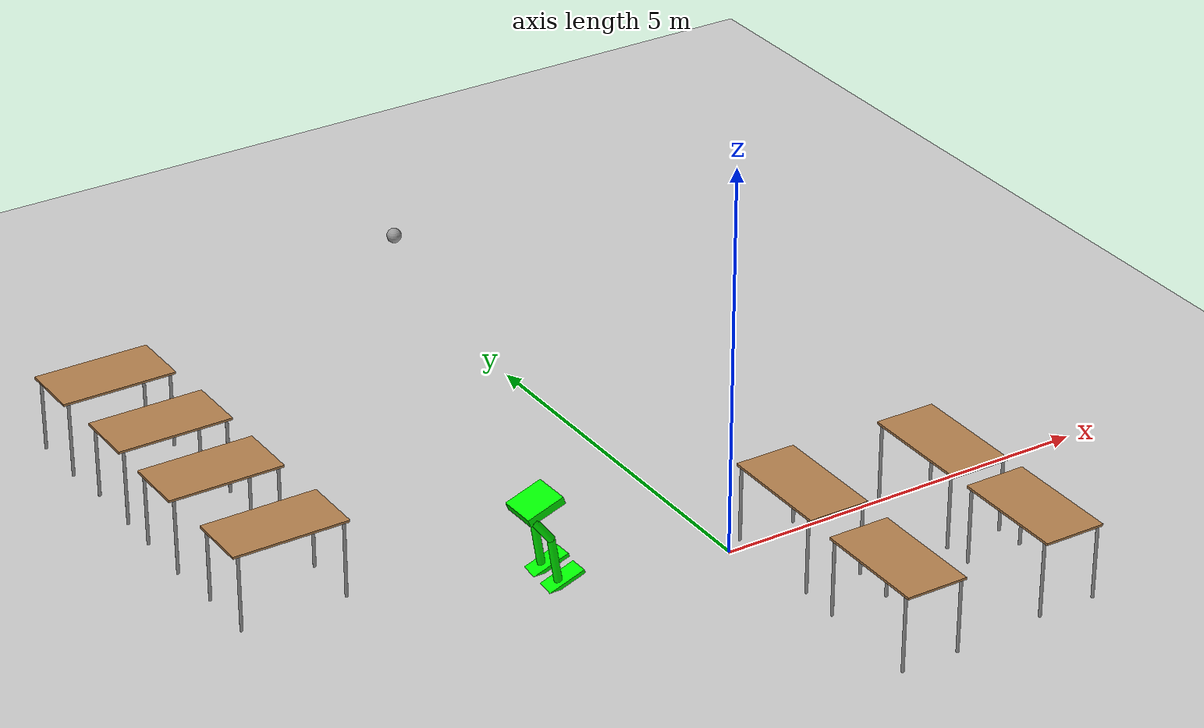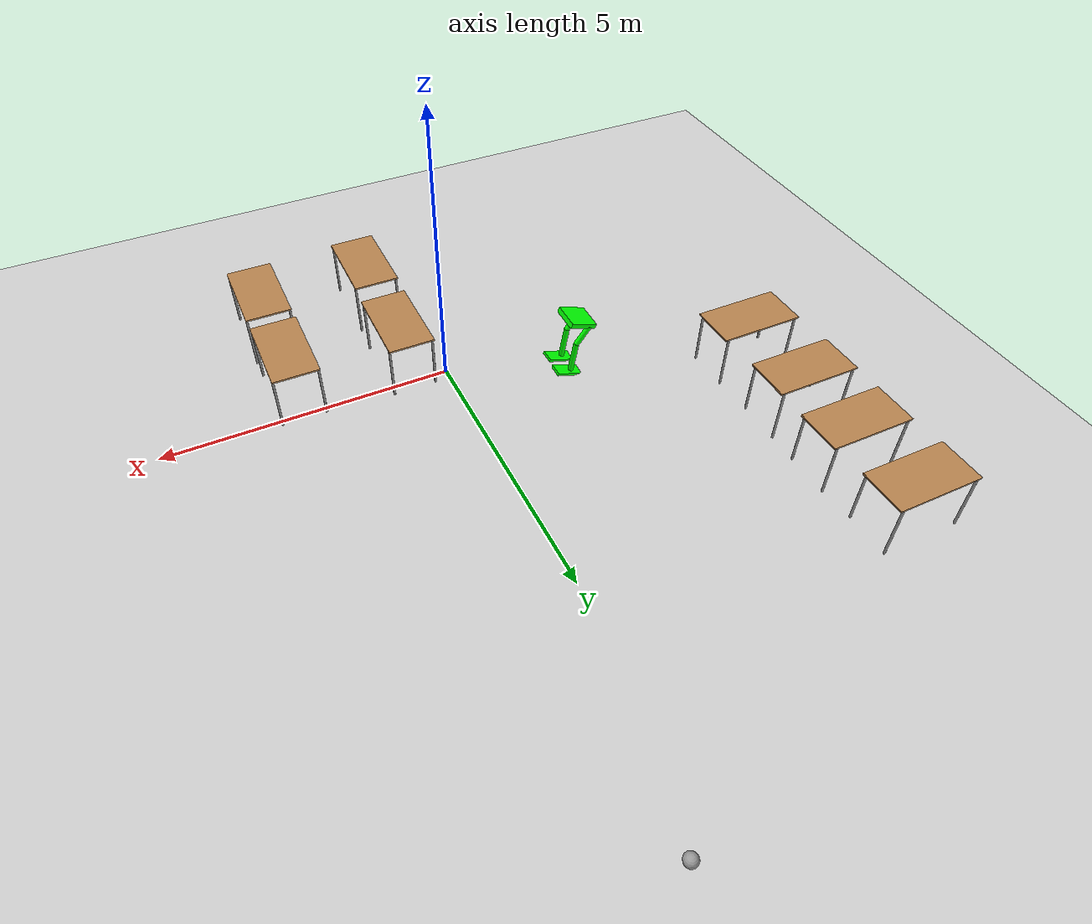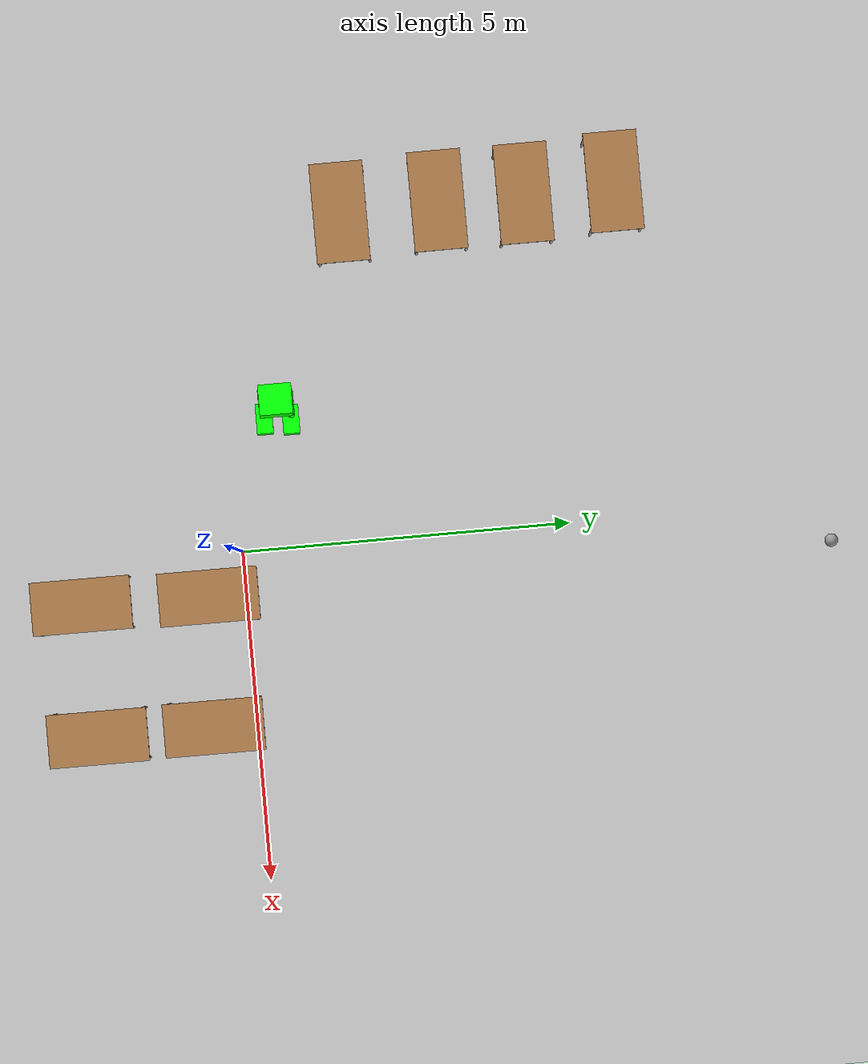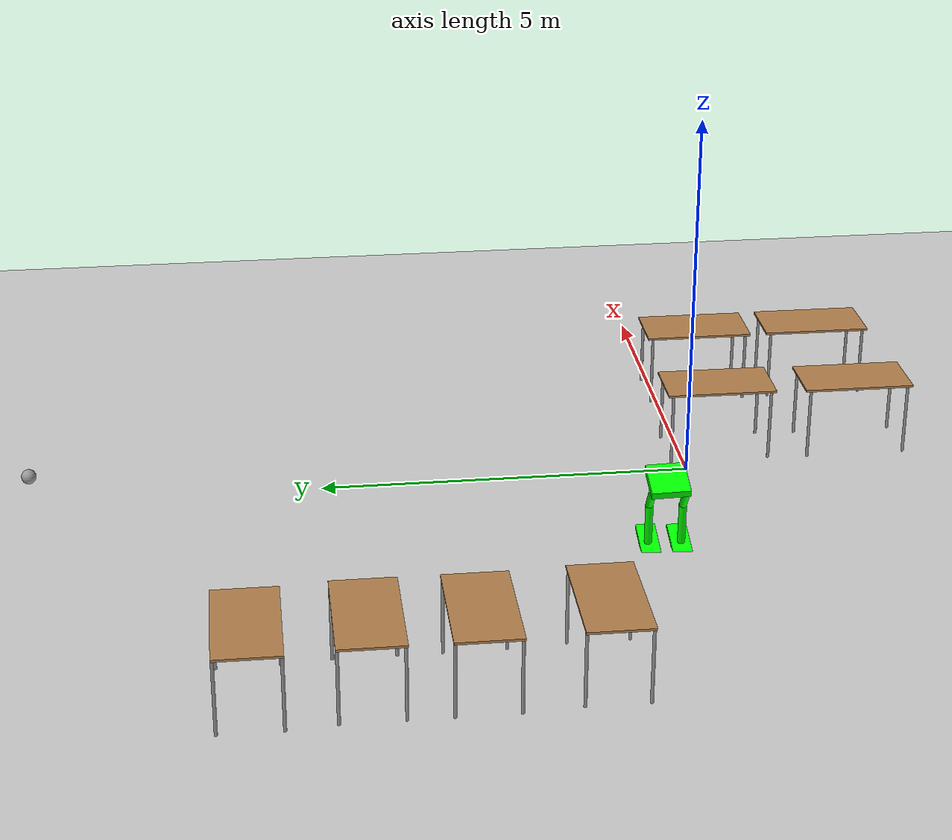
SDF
<sdf version="1.7">
 <world name="default">
  <model name="ground_plane">
   <static>1</static>
   <link name="link">
    <collision name="collision">
     <geometry><plane><normal>0 0 1</normal><size>100 100</size></plane></geometry>
     <surface>
      <contact><collide_bitmask>65535</collide_bitmask></contact>
      <friction><ode><mu>100</mu><mu2>50</mu2></ode></friction>
     </surface>
    </collision>
    <visual name="visual">
     <cast_shadows>0</cast_shadows>
     <geometry><plane><normal>0 0 1</normal><size>100 100</size></plane></geometry>
     <material>
      <script><uri>file://media/materials/scripts/gazebo.material</uri><name>Gazebo/Grey</name></script>
     </material>
    </visual>
   </link>
  </model>
  <model name="HumanoidRobot">
   <link name="link_0">
    <inertial>
     <mass>1</mass>
     <inertia>
      <ixx>0.166667</ixx>
      <ixy>0</ixy>
      <ixz>0</ixz>
      <iyy>0.166667</iyy>
      <iyz>0</iyz>
      <izz>0.166667</izz>
     </inertia>
    </inertial>
    <pose>-0.088426 0.010705 0.536121 0 -0 0</pose>
    <visual name="visual">
     <geometry><box><size>0.5 0.5 0.1</size></box></geometry>
     <material>
      <lighting>1</lighting>
      <script><uri>file://media/materials/scripts/gazebo.material</uri><name>Gazebo/Grey</name></script>
      <shader type="pixel"><normal_map>__default__</normal_map></shader>
      <ambient>0 1 0 1</ambient>
      <diffuse>0.7 0.7 0.7 1</diffuse>
      <specular>0.01 0.01 0.01 1</specular>
      <emissive>0 0 0 1</emissive>
     </material>
    </visual>
    <collision name="collision">
     <geometry><box><size>0.5 0.5 0.1</size></box></geometry>
     <surface>
      <friction>
       <ode><mu>1</mu><mu2>1</mu2><fdir1>0 0 0</fdir1><slip1>0</slip1><slip2>0</slip2></ode>
       <torsional>
        <coefficient>1</coefficient>
        <patch_radius>0</patch_radius>
        <surface_radius>0</surface_radius>
        <use_patch_radius>1</use_patch_radius>
        <ode><slip>0</slip></ode>
       </torsional>
      </friction>
      <bounce><restitution_coefficient>0</restitution_coefficient><threshold>1e+06</threshold></bounce>
      <contact>
       <collide_without_contact>0</collide_without_contact>
       <collide_without_contact_bitmask>1</collide_without_contact_bitmask>
       <collide_bitmask>1</collide_bitmask>
       <ode>
        <soft_cfm>0</soft_cfm>
        <soft_erp>0.2</soft_erp>
        <kp>1e+13</kp>
        <kd>1</kd>
        <max_vel>0.01</max_vel>
        <min_depth>0</min_depth>
       </ode>
       <bullet>
        <split_impulse>1</split_impulse>
        <split_impulse_penetration_threshold>-0.01</split_impulse_penetration_threshold>
        <soft_cfm>0</soft_cfm>
        <soft_erp>0.2</soft_erp>
        <kp>1e+13</kp>
        <kd>1</kd>
       </bullet>
      </contact>
     </surface>
    </collision>
   </link>
   <link name="link_1">
    <inertial>
     <mass>1</mass>
     <inertia>
      <ixx>0.166667</ixx>
      <ixy>0</ixy>
      <ixz>0</ixz>
      <iyy>0.166667</iyy>
      <iyz>0</iyz>
      <izz>0.166667</izz>
     </inertia>
    </inertial>
    <pose>-0.002836 -0.189031 -0.453961 0 -0 0</pose>
    <visual name="visual">
     <geometry><box><size>0.5 0.25 0.05</size></box></geometry>
     <material>
      <lighting>1</lighting>
      <script><uri>file://media/materials/scripts/gazebo.material</uri><name>Gazebo/Grey</name></script>
      <shader type="pixel"><normal_map>__default__</normal_map></shader>
      <ambient>0 1 0 1</ambient>
      <diffuse>0.7 0.7 0.7 1</diffuse>
      <specular>0.01 0.01 0.01 1</specular>
      <emissive>0 0 0 1</emissive>
     </material>
    </visual>
    <collision name="collision">
     <geometry><box><size>0.5 0.25 0.05</size></box></geometry>
     <surface>
      <friction>
       <ode><mu>1</mu><mu2>1</mu2><fdir1>0 0 0</fdir1><slip1>0</slip1><slip2>0</slip2></ode>
       <torsional>
        <coefficient>1</coefficient>
        <patch_radius>0</patch_radius>
        <surface_radius>0</surface_radius>
        <use_patch_radius>1</use_patch_radius>
        <ode><slip>0</slip></ode>
       </torsional>
      </friction>
      <bounce><restitution_coefficient>0</restitution_coefficient><threshold>1e+06</threshold></bounce>
      <contact>
       <collide_without_contact>0</collide_without_contact>
       <collide_without_contact_bitmask>1</collide_without_contact_bitmask>
       <collide_bitmask>1</collide_bitmask>
       <ode>
        <soft_cfm>0</soft_cfm>
        <soft_erp>0.2</soft_erp>
        <kp>1e+13</kp>
        <kd>1</kd>
        <max_vel>0.01</max_vel>
        <min_depth>0</min_depth>
       </ode>
       <bullet>
        <split_impulse>1</split_impulse>
        <split_impulse_penetration_threshold>-0.01</split_impulse_penetration_threshold>
        <soft_cfm>0</soft_cfm>
        <soft_erp>0.2</soft_erp>
        <kp>1e+13</kp>
        <kd>1</kd>
       </bullet>
      </contact>
     </surface>
    </collision>
   </link>
   <link name="link_1_clone">
    <inertial>
     <mass>1</mass>
     <inertia>
      <ixx>0.166667</ixx>
      <ixy>0</ixy>
      <ixz>0</ixz>
      <iyy>0.166667</iyy>
      <iyz>0</iyz>
      <izz>0.166667</izz>
     </inertia>
    </inertial>
    <pose>0.031524 0.211991 -0.453961 0 -0 0</pose>
    <visual name="visual">
     <geometry><box><size>0.5 0.25 0.05</size></box></geometry>
     <material>
      <lighting>1</lighting>
      <script><uri>file://media/materials/scripts/gazebo.material</uri><name>Gazebo/Grey</name></script>
      <shader type="pixel"><normal_map>__default__</normal_map></shader>
      <ambient>0 1 0 1</ambient>
      <diffuse>0.7 0.7 0.7 1</diffuse>
      <specular>0.01 0.01 0.01 1</specular>
      <emissive>0 0 0 1</emissive>
     </material>
    </visual>
    <collision name="collision">
     <geometry><box><size>0.5 0.25 0.05</size></box></geometry>
     <surface>
      <friction>
       <ode><mu>1</mu><mu2>1</mu2><fdir1>0 0 0</fdir1><slip1>0</slip1><slip2>0</slip2></ode>
       <torsional>
        <coefficient>1</coefficient>
        <patch_radius>0</patch_radius>
        <surface_radius>0</surface_radius>
        <use_patch_radius>1</use_patch_radius>
        <ode><slip>0</slip></ode>
       </torsional>
      </friction>
      <bounce><restitution_coefficient>0</restitution_coefficient><threshold>1e+06</threshold></bounce>
      <contact>
       <collide_without_contact>0</collide_without_contact>
       <collide_without_contact_bitmask>1</collide_without_contact_bitmask>
       <collide_bitmask>1</collide_bitmask>
       <ode>
        <soft_cfm>0</soft_cfm>
        <soft_erp>0.2</soft_erp>
        <kp>1e+13</kp>
        <kd>1</kd>
        <max_vel>0.01</max_vel>
        <min_depth>0</min_depth>
       </ode>
       <bullet>
        <split_impulse>1</split_impulse>
        <split_impulse_penetration_threshold>-0.01</split_impulse_penetration_threshold>
        <soft_cfm>0</soft_cfm>
        <soft_erp>0.2</soft_erp>
        <kp>1e+13</kp>
        <kd>1</kd>
       </bullet>
      </contact>
     </surface>
    </collision>
   </link>
   <link name="link_2">
    <inertial>
     <mass>1</mass>
     <inertia><ixx>0.145833</ixx><ixy>0</ixy><ixz>0</ixz><iyy>0.145833</iyy><iyz>0</iyz><izz>0.125</izz></inertia>
    </inertial>
    <pose>-0.002516 -0.205584 0.325243 0 0.295116 0</pose>
    <visual name="visual">
     <geometry><cylinder><radius>0.05</radius><length>0.4</length></cylinder></geometry>
     <material>
      <lighting>1</lighting>
      <script><uri>file://media/materials/scripts/gazebo.material</uri><name>Gazebo/Grey</name></script>
      <shader type="pixel"><normal_map>__default__</normal_map></shader>
      <ambient>0 1 0 1</ambient>
      <diffuse>0.7 0.7 0.7 1</diffuse>
      <specular>0.01 0.01 0.01 1</specular>
      <emissive>0 0 0 1</emissive>
     </material>
    </visual>
    <collision name="collision">
     <geometry><cylinder><radius>0.05</radius><length>0.4</length></cylinder></geometry>
     <surface>
      <friction>
       <ode><mu>1</mu><mu2>1</mu2><fdir1>0 0 0</fdir1><slip1>0</slip1><slip2>0</slip2></ode>
       <torsional>
        <coefficient>1</coefficient>
        <patch_radius>0</patch_radius>
        <surface_radius>0</surface_radius>
        <use_patch_radius>1</use_patch_radius>
        <ode><slip>0</slip></ode>
       </torsional>
      </friction>
      <bounce><restitution_coefficient>0</restitution_coefficient><threshold>1e+06</threshold></bounce>
      <contact>
       <collide_without_contact>0</collide_without_contact>
       <collide_without_contact_bitmask>1</collide_without_contact_bitmask>
       <collide_bitmask>1</collide_bitmask>
       <ode>
        <soft_cfm>0</soft_cfm>
        <soft_erp>0.2</soft_erp>
        <kp>1e+13</kp>
        <kd>1</kd>
        <max_vel>0.01</max_vel>
        <min_depth>0</min_depth>
       </ode>
       <bullet>
        <split_impulse>1</split_impulse>
        <split_impulse_penetration_threshold>-0.01</split_impulse_penetration_threshold>
        <soft_cfm>0</soft_cfm>
        <soft_erp>0.2</soft_erp>
        <kp>1e+13</kp>
        <kd>1</kd>
       </bullet>
      </contact>
     </surface>
    </collision>
   </link>
   <link name="link_2_clone_0">
    <inertial>
     <mass>1</mass>
     <inertia><ixx>0.145833</ixx><ixy>0</ixy><ixz>0</ixz><iyy>0.145833</iyy><iyz>0</iyz><izz>0.125</izz></inertia>
    </inertial>
    <pose>0.033564 0.221349 0.325243 0 0.295116 0</pose>
    <visual name="visual">
     <geometry><cylinder><radius>0.05</radius><length>0.4</length></cylinder></geometry>
     <material>
      <lighting>1</lighting>
      <script><uri>file://media/materials/scripts/gazebo.material</uri><name>Gazebo/Grey</name></script>
      <shader type="pixel"><normal_map>__default__</normal_map></shader>
      <ambient>0 1 0 1</ambient>
      <diffuse>0.7 0.7 0.7 1</diffuse>
      <specular>0.01 0.01 0.01 1</specular>
      <emissive>0 0 0 1</emissive>
     </material>
    </visual>
    <collision name="collision">
     <geometry><cylinder><radius>0.05</radius><length>0.4</length></cylinder></geometry>
     <surface>
      <friction>
       <ode><mu>1</mu><mu2>1</mu2><fdir1>0 0 0</fdir1><slip1>0</slip1><slip2>0</slip2></ode>
       <torsional>
        <coefficient>1</coefficient>
        <patch_radius>0</patch_radius>
        <surface_radius>0</surface_radius>
        <use_patch_radius>1</use_patch_radius>
        <ode><slip>0</slip></ode>
       </torsional>
      </friction>
      <bounce><restitution_coefficient>0</restitution_coefficient><threshold>1e+06</threshold></bounce>
      <contact>
       <collide_without_contact>0</collide_without_contact>
       <collide_without_contact_bitmask>1</collide_without_contact_bitmask>
       <collide_bitmask>1</collide_bitmask>
       <ode>
        <soft_cfm>0</soft_cfm>
        <soft_erp>0.2</soft_erp>
        <kp>1e+13</kp>
        <kd>1</kd>
        <max_vel>0.01</max_vel>
        <min_depth>0</min_depth>
       </ode>
       <bullet>
        <split_impulse>1</split_impulse>
        <split_impulse_penetration_threshold>-0.01</split_impulse_penetration_threshold>
        <soft_cfm>0</soft_cfm>
        <soft_erp>0.2</soft_erp>
        <kp>1e+13</kp>
        <kd>1</kd>
       </bullet>
      </contact>
     </surface>
    </collision>
   </link>
   <link name="link_2_clone_clone">
    <inertial>
     <mass>1</mass>
     <inertia><ixx>0.145833</ixx><ixy>0</ixy><ixz>0</ixz><iyy>0.145833</iyy><iyz>0</iyz><izz>0.125</izz></inertia>
    </inertial>
    <pose>-0.002836 -0.203823 -0.139342 0 -0.190908 0</pose>
    <visual name="visual">
     <geometry><cylinder><radius>0.05</radius><length>0.6</length></cylinder></geometry>
     <material>
      <lighting>1</lighting>
      <script><uri>file://media/materials/scripts/gazebo.material</uri><name>Gazebo/Grey</name></script>
      <shader type="pixel"><normal_map>__default__</normal_map></shader>
      <ambient>0 1 0 1</ambient>
      <diffuse>0.7 0.7 0.7 1</diffuse>
      <specular>0.01 0.01 0.01 1</specular>
      <emissive>0 0 0 1</emissive>
     </material>
    </visual>
    <collision name="collision">
     <geometry><cylinder><radius>0.05</radius><length>0.6</length></cylinder></geometry>
     <surface>
      <friction>
       <ode><mu>1</mu><mu2>1</mu2><fdir1>0 0 0</fdir1><slip1>0</slip1><slip2>0</slip2></ode>
       <torsional>
        <coefficient>1</coefficient>
        <patch_radius>0</patch_radius>
        <surface_radius>0</surface_radius>
        <use_patch_radius>1</use_patch_radius>
        <ode><slip>0</slip></ode>
       </torsional>
      </friction>
      <bounce><restitution_coefficient>0</restitution_coefficient><threshold>1e+06</threshold></bounce>
      <contact>
       <collide_without_contact>0</collide_without_contact>
       <collide_without_contact_bitmask>1</collide_without_contact_bitmask>
       <collide_bitmask>1</collide_bitmask>
       <ode>
        <soft_cfm>0</soft_cfm>
        <soft_erp>0.2</soft_erp>
        <kp>1e+13</kp>
        <kd>1</kd>
        <max_vel>0.01</max_vel>
        <min_depth>0</min_depth>
       </ode>
       <bullet>
        <split_impulse>1</split_impulse>
        <split_impulse_penetration_threshold>-0.01</split_impulse_penetration_threshold>
        <soft_cfm>0</soft_cfm>
        <soft_erp>0.2</soft_erp>
        <kp>1e+13</kp>
        <kd>1</kd>
       </bullet>
      </contact>
     </surface>
    </collision>
   </link>
   <link name="link_2_clone_clone_clone">
    <inertial>
     <mass>1</mass>
     <inertia><ixx>0.145833</ixx><ixy>0</ixy><ixz>0</ixz><iyy>0.145833</iyy><iyz>0</iyz><izz>0.125</izz></inertia>
    </inertial>
    <pose>0.031524 0.2206 -0.139342 0 -0.190908 0</pose>
    <visual name="visual">
     <geometry><cylinder><radius>0.05</radius><length>0.6</length></cylinder></geometry>
     <material>
      <lighting>1</lighting>
      <script><uri>file://media/materials/scripts/gazebo.material</uri><name>Gazebo/Grey</name></script>
      <shader type="pixel"><normal_map>__default__</normal_map></shader>
      <ambient>0 1 0 1</ambient>
      <diffuse>0.7 0.7 0.7 1</diffuse>
      <specular>0.01 0.01 0.01 1</specular>
      <emissive>0 0 0 1</emissive>
     </material>
    </visual>
    <collision name="collision">
     <geometry><cylinder><radius>0.05</radius><length>0.6</length></cylinder></geometry>
     <surface>
      <friction>
       <ode><mu>1</mu><mu2>1</mu2><fdir1>0 0 0</fdir1><slip1>0</slip1><slip2>0</slip2></ode>
       <torsional>
        <coefficient>1</coefficient>
        <patch_radius>0</patch_radius>
        <surface_radius>0</surface_radius>
        <use_patch_radius>1</use_patch_radius>
        <ode><slip>0</slip></ode>
       </torsional>
      </friction>
      <bounce><restitution_coefficient>0</restitution_coefficient><threshold>1e+06</threshold></bounce>
      <contact>
       <collide_without_contact>0</collide_without_contact>
       <collide_without_contact_bitmask>1</collide_without_contact_bitmask>
       <collide_bitmask>1</collide_bitmask>
       <ode>
        <soft_cfm>0</soft_cfm>
        <soft_erp>0.2</soft_erp>
        <kp>1e+13</kp>
        <kd>1</kd>
        <max_vel>0.01</max_vel>
        <min_depth>0</min_depth>
       </ode>
       <bullet>
        <split_impulse>1</split_impulse>
        <split_impulse_penetration_threshold>-0.01</split_impulse_penetration_threshold>
        <soft_cfm>0</soft_cfm>
        <soft_erp>0.2</soft_erp>
        <kp>1e+13</kp>
        <kd>1</kd>
       </bullet>
      </contact>
     </surface>
    </collision>
   </link>
   <joint name="link_0_JOINT_0" type="revolute">
    <parent>link_0</parent>
    <child>link_2</child>
    <axis>
     <xyz>0 0 1</xyz>
     <limit>
      <lower>-1.79769e+308</lower>
      <upper>1.79769e+308</upper>
      <effort>-1</effort>
      <velocity>-1</velocity>
     </limit>
     <dynamics>
      <spring_reference>0</spring_reference>
      <spring_stiffness>0</spring_stiffness>
      <damping>0</damping>
      <friction>0</friction>
     </dynamics>
    </axis>
    <physics>
     <ode><limit><cfm>0</cfm><erp>0.2</erp></limit><suspension><cfm>0</cfm><erp>0.2</erp></suspension></ode>
    </physics>
   </joint>
   <joint name="link_0_JOINT_1" type="revolute">
    <parent>link_0</parent>
    <child>link_2_clone_0</child>
    <axis>
     <xyz>0 0 1</xyz>
     <limit>
      <lower>-1.79769e+308</lower>
      <upper>1.79769e+308</upper>
      <effort>-1</effort>
      <velocity>-1</velocity>
     </limit>
     <dynamics>
      <spring_reference>0</spring_reference>
      <spring_stiffness>0</spring_stiffness>
      <damping>0</damping>
      <friction>0</friction>
     </dynamics>
    </axis>
    <physics>
     <ode><limit><cfm>0</cfm><erp>0.2</erp></limit><suspension><cfm>0</cfm><erp>0.2</erp></suspension></ode>
    </physics>
   </joint>
   <joint name="link_2_JOINT_3" type="revolute">
    <parent>link_2</parent>
    <child>link_2_clone_clone</child>
    <axis>
     <xyz>0 0 1</xyz>
     <limit>
      <lower>-1.79769e+308</lower>
      <upper>1.79769e+308</upper>
      <effort>-1</effort>
      <velocity>-1</velocity>
     </limit>
     <dynamics>
      <spring_reference>0</spring_reference>
      <spring_stiffness>0</spring_stiffness>
      <damping>0</damping>
      <friction>0</friction>
     </dynamics>
    </axis>
    <physics>
     <ode><limit><cfm>0</cfm><erp>0.2</erp></limit><suspension><cfm>0</cfm><erp>0.2</erp></suspension></ode>
    </physics>
   </joint>
   <joint name="link_2_clone_0_JOINT_4" type="revolute">
    <parent>link_2_clone_0</parent>
    <child>link_2_clone_clone_clone</child>
    <axis>
     <xyz>0 0 1</xyz>
     <limit>
      <lower>-1.79769e+308</lower>
      <upper>1.79769e+308</upper>
      <effort>-1</effort>
      <velocity>-1</velocity>
     </limit>
     <dynamics>
      <spring_reference>0</spring_reference>
      <spring_stiffness>0</spring_stiffness>
      <damping>0</damping>
      <friction>0</friction>
     </dynamics>
    </axis>
    <physics>
     <ode><limit><cfm>0</cfm><erp>0.2</erp></limit><suspension><cfm>0</cfm><erp>0.2</erp></suspension></ode>
    </physics>
   </joint>
   <joint name="link_2_clone_clone_JOINT_5" type="revolute">
    <parent>link_2_clone_clone</parent>
    <child>link_1</child>
    <axis>
     <xyz>0 0 1</xyz>
     <limit>
      <lower>-1.79769e+308</lower>
      <upper>1.79769e+308</upper>
      <effort>-1</effort>
      <velocity>-1</velocity>
     </limit>
     <dynamics>
      <spring_reference>0</spring_reference>
      <spring_stiffness>0</spring_stiffness>
      <damping>0</damping>
      <friction>0</friction>
     </dynamics>
    </axis>
    <physics>
     <ode><limit><cfm>0</cfm><erp>0.2</erp></limit><suspension><cfm>0</cfm><erp>0.2</erp></suspension></ode>
    </physics>
   </joint>
   <joint name="link_2_clone_clone_clone_JOINT_6" type="revolute">
    <parent>link_2_clone_clone_clone</parent>
    <child>link_1_clone</child>
    <axis>
     <xyz>0 0 1</xyz>
     <limit>
      <lower>-1.79769e+308</lower>
      <upper>1.79769e+308</upper>
      <effort>-1</effort>
      <velocity>-1</velocity>
     </limit>
     <dynamics>
      <spring_reference>0</spring_reference>
      <spring_stiffness>0</spring_stiffness>
      <damping>0</damping>
      <friction>0</friction>
     </dynamics>
    </axis>
    <physics>
     <ode><limit><cfm>0</cfm><erp>0.2</erp></limit><suspension><cfm>0</cfm><erp>0.2</erp></suspension></ode>
    </physics>
   </joint>
   <static>0</static>
   <pose>-2.1027 0.733503 0.473362 0.028454 0.335167 -3.13391</pose>
  </model>
  <model name="table">
   <static>1</static>
   <link name="link">
    <collision name="surface">
     <pose>0 0 1 0 -0 0</pose>
     <geometry><box><size>1.5 0.8 0.03</size></box></geometry>
     <surface><friction><ode><mu>0.6</mu><mu2>0.6</mu2></ode></friction></surface>
    </collision>
    <visual name="visual1">
     <pose>0 0 1 0 -0 0</pose>
     <geometry><box><size>1.5 0.8 0.03</size></box></geometry>
     <material>
      <script><uri>file://media/materials/scripts/gazebo.material</uri><name>Gazebo/Wood</name></script>
     </material>
    </visual>
    <collision name="front_left_leg">
     <pose>0.68 0.38 0.5 0 -0 0</pose>
     <geometry><cylinder><radius>0.02</radius><length>1</length></cylinder></geometry>
    </collision>
    <visual name="front_left_leg">
     <pose>0.68 0.38 0.5 0 -0 0</pose>
     <geometry><cylinder><radius>0.02</radius><length>1</length></cylinder></geometry>
     <material>
      <script><uri>file://media/materials/scripts/gazebo.material</uri><name>Gazebo/Grey</name></script>
     </material>
    </visual>
    <collision name="front_right_leg">
     <pose>0.68 -0.38 0.5 0 -0 0</pose>
     <geometry><cylinder><radius>0.02</radius><length>1</length></cylinder></geometry>
    </collision>
    <visual name="front_right_leg">
     <pose>0.68 -0.38 0.5 0 -0 0</pose>
     <geometry><cylinder><radius>0.02</radius><length>1</length></cylinder></geometry>
     <material>
      <script><uri>file://media/materials/scripts/gazebo.material</uri><name>Gazebo/Grey</name></script>
     </material>
    </visual>
    <collision name="back_right_leg">
     <pose>-0.68 -0.38 0.5 0 -0 0</pose>
     <geometry><cylinder><radius>0.02</radius><length>1</length></cylinder></geometry>
    </collision>
    <visual name="back_right_leg">
     <pose>-0.68 -0.38 0.5 0 -0 0</pose>
     <geometry><cylinder><radius>0.02</radius><length>1</length></cylinder></geometry>
     <material>
      <script><uri>file://media/materials/scripts/gazebo.material</uri><name>Gazebo/Grey</name></script>
     </material>
    </visual>
    <collision name="back_left_leg">
     <pose>-0.68 0.38 0.5 0 -0 0</pose>
     <geometry><cylinder><radius>0.02</radius><length>1</length></cylinder></geometry>
    </collision>
    <visual name="back_left_leg">
     <pose>-0.68 0.38 0.5 0 -0 0</pose>
     <geometry><cylinder><radius>0.02</radius><length>1</length></cylinder></geometry>
     <material>
      <script><uri>file://media/materials/scripts/gazebo.material</uri><name>Gazebo/Grey</name></script>
     </material>
    </visual>
   </link>
   <pose>-5.01998 6.07015 0 0 -0 0</pose>
  </model>
  <model name="table_clone">
   <static>1</static>
   <link name="link">
    <collision name="surface">
     <pose>0 0 1 0 -0 0</pose>
     <geometry><box><size>1.5 0.8 0.03</size></box></geometry>
     <surface><friction><ode><mu>0.6</mu><mu2>0.6</mu2></ode></friction></surface>
    </collision>
    <visual name="visual1">
     <pose>0 0 1 0 -0 0</pose>
     <geometry><box><size>1.5 0.8 0.03</size></box></geometry>
     <material>
      <script><uri>file://media/materials/scripts/gazebo.material</uri><name>Gazebo/Wood</name></script>
     </material>
    </visual>
    <collision name="front_left_leg">
     <pose>0.68 0.38 0.5 0 -0 0</pose>
     <geometry><cylinder><radius>0.02</radius><length>1</length></cylinder></geometry>
    </collision>
    <visual name="front_left_leg">
     <pose>0.68 0.38 0.5 0 -0 0</pose>
     <geometry><cylinder><radius>0.02</radius><length>1</length></cylinder></geometry>
     <material>
      <script><uri>file://media/materials/scripts/gazebo.material</uri><name>Gazebo/Grey</name></script>
     </material>
    </visual>
    <collision name="front_right_leg">
     <pose>0.68 -0.38 0.5 0 -0 0</pose>
     <geometry><cylinder><radius>0.02</radius><length>1</length></cylinder></geometry>
    </collision>
    <visual name="front_right_leg">
     <pose>0.68 -0.38 0.5 0 -0 0</pose>
     <geometry><cylinder><radius>0.02</radius><length>1</length></cylinder></geometry>
     <material>
      <script><uri>file://media/materials/scripts/gazebo.material</uri><name>Gazebo/Grey</name></script>
     </material>
    </visual>
    <collision name="back_right_leg">
     <pose>-0.68 -0.38 0.5 0 -0 0</pose>
     <geometry><cylinder><radius>0.02</radius><length>1</length></cylinder></geometry>
    </collision>
    <visual name="back_right_leg">
     <pose>-0.68 -0.38 0.5 0 -0 0</pose>
     <geometry><cylinder><radius>0.02</radius><length>1</length></cylinder></geometry>
     <material>
      <script><uri>file://media/materials/scripts/gazebo.material</uri><name>Gazebo/Grey</name></script>
     </material>
    </visual>
    <collision name="back_left_leg">
     <pose>-0.68 0.38 0.5 0 -0 0</pose>
     <geometry><cylinder><radius>0.02</radius><length>1</length></cylinder></geometry>
    </collision>
    <visual name="back_left_leg">
     <pose>-0.68 0.38 0.5 0 -0 0</pose>
     <geometry><cylinder><radius>0.02</radius><length>1</length></cylinder></geometry>
     <material>
      <script><uri>file://media/materials/scripts/gazebo.material</uri><name>Gazebo/Grey</name></script>
     </material>
    </visual>
   </link>
   <pose>-4.96274 4.7131 0 0 -0 0</pose>
  </model>
  <model name="table_clone_0">
   <static>1</static>
   <link name="link">
    <collision name="surface">
     <pose>0 0 1 0 -0 0</pose>
     <geometry><box><size>1.5 0.8 0.03</size></box></geometry>
     <surface><friction><ode><mu>0.6</mu><mu2>0.6</mu2></ode></friction></surface>
    </collision>
    <visual name="visual1">
     <pose>0 0 1 0 -0 0</pose>
     <geometry><box><size>1.5 0.8 0.03</size></box></geometry>
     <material>
      <script><uri>file://media/materials/scripts/gazebo.material</uri><name>Gazebo/Wood</name></script>
     </material>
    </visual>
    <collision name="front_left_leg">
     <pose>0.68 0.38 0.5 0 -0 0</pose>
     <geometry><cylinder><radius>0.02</radius><length>1</length></cylinder></geometry>
    </collision>
    <visual name="front_left_leg">
     <pose>0.68 0.38 0.5 0 -0 0</pose>
     <geometry><cylinder><radius>0.02</radius><length>1</length></cylinder></geometry>
     <material>
      <script><uri>file://media/materials/scripts/gazebo.material</uri><name>Gazebo/Grey</name></script>
     </material>
    </visual>
    <collision name="front_right_leg">
     <pose>0.68 -0.38 0.5 0 -0 0</pose>
     <geometry><cylinder><radius>0.02</radius><length>1</length></cylinder></geometry>
    </collision>
    <visual name="front_right_leg">
     <pose>0.68 -0.38 0.5 0 -0 0</pose>
     <geometry><cylinder><radius>0.02</radius><length>1</length></cylinder></geometry>
     <material>
      <script><uri>file://media/materials/scripts/gazebo.material</uri><name>Gazebo/Grey</name></script>
     </material>
    </visual>
    <collision name="back_right_leg">
     <pose>-0.68 -0.38 0.5 0 -0 0</pose>
     <geometry><cylinder><radius>0.02</radius><length>1</length></cylinder></geometry>
    </collision>
    <visual name="back_right_leg">
     <pose>-0.68 -0.38 0.5 0 -0 0</pose>
     <geometry><cylinder><radius>0.02</radius><length>1</length></cylinder></geometry>
     <material>
      <script><uri>file://media/materials/scripts/gazebo.material</uri><name>Gazebo/Grey</name></script>
     </material>
    </visual>
    <collision name="back_left_leg">
     <pose>-0.68 0.38 0.5 0 -0 0</pose>
     <geometry><cylinder><radius>0.02</radius><length>1</length></cylinder></geometry>
    </collision>
    <visual name="back_left_leg">
     <pose>-0.68 0.38 0.5 0 -0 0</pose>
     <geometry><cylinder><radius>0.02</radius><length>1</length></cylinder></geometry>
     <material>
      <script><uri>file://media/materials/scripts/gazebo.material</uri><name>Gazebo/Grey</name></script>
     </material>
    </visual>
   </link>
   <pose>-4.96837 3.41656 0 0 -0 0</pose>
  </model>
  <model name="table_clone_1">
   <static>1</static>
   <link name="link">
    <collision name="surface">
     <pose>0 0 1 0 -0 0</pose>
     <geometry><box><size>1.5 0.8 0.03</size></box></geometry>
     <surface><friction><ode><mu>0.6</mu><mu2>0.6</mu2></ode></friction></surface>
    </collision>
    <visual name="visual1">
     <pose>0 0 1 0 -0 0</pose>
     <geometry><box><size>1.5 0.8 0.03</size></box></geometry>
     <material>
      <script><uri>file://media/materials/scripts/gazebo.material</uri><name>Gazebo/Wood</name></script>
     </material>
    </visual>
    <collision name="front_left_leg">
     <pose>0.68 0.38 0.5 0 -0 0</pose>
     <geometry><cylinder><radius>0.02</radius><length>1</length></cylinder></geometry>
    </collision>
    <visual name="front_left_leg">
     <pose>0.68 0.38 0.5 0 -0 0</pose>
     <geometry><cylinder><radius>0.02</radius><length>1</length></cylinder></geometry>
     <material>
      <script><uri>file://media/materials/scripts/gazebo.material</uri><name>Gazebo/Grey</name></script>
     </material>
    </visual>
    <collision name="front_right_leg">
     <pose>0.68 -0.38 0.5 0 -0 0</pose>
     <geometry><cylinder><radius>0.02</radius><length>1</length></cylinder></geometry>
    </collision>
    <visual name="front_right_leg">
     <pose>0.68 -0.38 0.5 0 -0 0</pose>
     <geometry><cylinder><radius>0.02</radius><length>1</length></cylinder></geometry>
     <material>
      <script><uri>file://media/materials/scripts/gazebo.material</uri><name>Gazebo/Grey</name></script>
     </material>
    </visual>
    <collision name="back_right_leg">
     <pose>-0.68 -0.38 0.5 0 -0 0</pose>
     <geometry><cylinder><radius>0.02</radius><length>1</length></cylinder></geometry>
    </collision>
    <visual name="back_right_leg">
     <pose>-0.68 -0.38 0.5 0 -0 0</pose>
     <geometry><cylinder><radius>0.02</radius><length>1</length></cylinder></geometry>
     <material>
      <script><uri>file://media/materials/scripts/gazebo.material</uri><name>Gazebo/Grey</name></script>
     </material>
    </visual>
    <collision name="back_left_leg">
     <pose>-0.68 0.38 0.5 0 -0 0</pose>
     <geometry><cylinder><radius>0.02</radius><length>1</length></cylinder></geometry>
    </collision>
    <visual name="back_left_leg">
     <pose>-0.68 0.38 0.5 0 -0 0</pose>
     <geometry><cylinder><radius>0.02</radius><length>1</length></cylinder></geometry>
     <material>
      <script><uri>file://media/materials/scripts/gazebo.material</uri><name>Gazebo/Grey</name></script>
     </material>
    </visual>
   </link>
   <pose>-4.92122 1.94307 0 0 -0 0</pose>
  </model>
  <model name="table_clone_2">
   <static>1</static>
   <link name="link">
    <collision name="surface">
     <pose>0 0 1 0 -0 0</pose>
     <geometry><box><size>1.5 0.8 0.03</size></box></geometry>
     <surface><friction><ode><mu>0.6</mu><mu2>0.6</mu2></ode></friction></surface>
    </collision>
    <visual name="visual1">
     <pose>0 0 1 0 -0 0</pose>
     <geometry><box><size>1.5 0.8 0.03</size></box></geometry>
     <material>
      <script><uri>file://media/materials/scripts/gazebo.material</uri><name>Gazebo/Wood</name></script>
     </material>
    </visual>
    <collision name="front_left_leg">
     <pose>0.68 0.38 0.5 0 -0 0</pose>
     <geometry><cylinder><radius>0.02</radius><length>1</length></cylinder></geometry>
    </collision>
    <visual name="front_left_leg">
     <pose>0.68 0.38 0.5 0 -0 0</pose>
     <geometry><cylinder><radius>0.02</radius><length>1</length></cylinder></geometry>
     <material>
      <script><uri>file://media/materials/scripts/gazebo.material</uri><name>Gazebo/Grey</name></script>
     </material>
    </visual>
    <collision name="front_right_leg">
     <pose>0.68 -0.38 0.5 0 -0 0</pose>
     <geometry><cylinder><radius>0.02</radius><length>1</length></cylinder></geometry>
    </collision>
    <visual name="front_right_leg">
     <pose>0.68 -0.38 0.5 0 -0 0</pose>
     <geometry><cylinder><radius>0.02</radius><length>1</length></cylinder></geometry>
     <material>
      <script><uri>file://media/materials/scripts/gazebo.material</uri><name>Gazebo/Grey</name></script>
     </material>
    </visual>
    <collision name="back_right_leg">
     <pose>-0.68 -0.38 0.5 0 -0 0</pose>
     <geometry><cylinder><radius>0.02</radius><length>1</length></cylinder></geometry>
    </collision>
    <visual name="back_right_leg">
     <pose>-0.68 -0.38 0.5 0 -0 0</pose>
     <geometry><cylinder><radius>0.02</radius><length>1</length></cylinder></geometry>
     <material>
      <script><uri>file://media/materials/scripts/gazebo.material</uri><name>Gazebo/Grey</name></script>
     </material>
    </visual>
    <collision name="back_left_leg">
     <pose>-0.68 0.38 0.5 0 -0 0</pose>
     <geometry><cylinder><radius>0.02</radius><length>1</length></cylinder></geometry>
    </collision>
    <visual name="back_left_leg">
     <pose>-0.68 0.38 0.5 0 -0 0</pose>
     <geometry><cylinder><radius>0.02</radius><length>1</length></cylinder></geometry>
     <material>
      <script><uri>file://media/materials/scripts/gazebo.material</uri><name>Gazebo/Grey</name></script>
     </material>
    </visual>
   </link>
   <pose>0.639722 -0.516602 0 0 -0 1.5674</pose>
  </model>
  <model name="table_clone_2_clone">
   <static>1</static>
   <link name="link">
    <collision name="surface">
     <pose>0 0 1 0 -0 0</pose>
     <geometry><box><size>1.5 0.8 0.03</size></box></geometry>
     <surface><friction><ode><mu>0.6</mu><mu2>0.6</mu2></ode></friction></surface>
    </collision>
    <visual name="visual1">
     <pose>0 0 1 0 -0 0</pose>
     <geometry><box><size>1.5 0.8 0.03</size></box></geometry>
     <material>
      <script><uri>file://media/materials/scripts/gazebo.material</uri><name>Gazebo/Wood</name></script>
     </material>
    </visual>
    <collision name="front_left_leg">
     <pose>0.68 0.38 0.5 0 -0 0</pose>
     <geometry><cylinder><radius>0.02</radius><length>1</length></cylinder></geometry>
    </collision>
    <visual name="front_left_leg">
     <pose>0.68 0.38 0.5 0 -0 0</pose>
     <geometry><cylinder><radius>0.02</radius><length>1</length></cylinder></geometry>
     <material>
      <script><uri>file://media/materials/scripts/gazebo.material</uri><name>Gazebo/Grey</name></script>
     </material>
    </visual>
    <collision name="front_right_leg">
     <pose>0.68 -0.38 0.5 0 -0 0</pose>
     <geometry><cylinder><radius>0.02</radius><length>1</length></cylinder></geometry>
    </collision>
    <visual name="front_right_leg">
     <pose>0.68 -0.38 0.5 0 -0 0</pose>
     <geometry><cylinder><radius>0.02</radius><length>1</length></cylinder></geometry>
     <material>
      <script><uri>file://media/materials/scripts/gazebo.material</uri><name>Gazebo/Grey</name></script>
     </material>
    </visual>
    <collision name="back_right_leg">
     <pose>-0.68 -0.38 0.5 0 -0 0</pose>
     <geometry><cylinder><radius>0.02</radius><length>1</length></cylinder></geometry>
    </collision>
    <visual name="back_right_leg">
     <pose>-0.68 -0.38 0.5 0 -0 0</pose>
     <geometry><cylinder><radius>0.02</radius><length>1</length></cylinder></geometry>
     <material>
      <script><uri>file://media/materials/scripts/gazebo.material</uri><name>Gazebo/Grey</name></script>
     </material>
    </visual>
    <collision name="back_left_leg">
     <pose>-0.68 0.38 0.5 0 -0 0</pose>
     <geometry><cylinder><radius>0.02</radius><length>1</length></cylinder></geometry>
    </collision>
    <visual name="back_left_leg">
     <pose>-0.68 0.38 0.5 0 -0 0</pose>
     <geometry><cylinder><radius>0.02</radius><length>1</length></cylinder></geometry>
     <material>
      <script><uri>file://media/materials/scripts/gazebo.material</uri><name>Gazebo/Grey</name></script>
     </material>
    </visual>
   </link>
   <pose>0.606878 -2.42441 0 0 -0 1.5674</pose>
  </model>
  <model name="table_clone_2_clone_0">
   <static>1</static>
   <link name="link">
    <collision name="surface">
     <pose>0 0 1 0 -0 0</pose>
     <geometry><box><size>1.5 0.8 0.03</size></box></geometry>
     <surface><friction><ode><mu>0.6</mu><mu2>0.6</mu2></ode></friction></surface>
    </collision>
    <visual name="visual1">
     <pose>0 0 1 0 -0 0</pose>
     <geometry><box><size>1.5 0.8 0.03</size></box></geometry>
     <material>
      <script><uri>file://media/materials/scripts/gazebo.material</uri><name>Gazebo/Wood</name></script>
     </material>
    </visual>
    <collision name="front_left_leg">
     <pose>0.68 0.38 0.5 0 -0 0</pose>
     <geometry><cylinder><radius>0.02</radius><length>1</length></cylinder></geometry>
    </collision>
    <visual name="front_left_leg">
     <pose>0.68 0.38 0.5 0 -0 0</pose>
     <geometry><cylinder><radius>0.02</radius><length>1</length></cylinder></geometry>
     <material>
      <script><uri>file://media/materials/scripts/gazebo.material</uri><name>Gazebo/Grey</name></script>
     </material>
    </visual>
    <collision name="front_right_leg">
     <pose>0.68 -0.38 0.5 0 -0 0</pose>
     <geometry><cylinder><radius>0.02</radius><length>1</length></cylinder></geometry>
    </collision>
    <visual name="front_right_leg">
     <pose>0.68 -0.38 0.5 0 -0 0</pose>
     <geometry><cylinder><radius>0.02</radius><length>1</length></cylinder></geometry>
     <material>
      <script><uri>file://media/materials/scripts/gazebo.material</uri><name>Gazebo/Grey</name></script>
     </material>
    </visual>
    <collision name="back_right_leg">
     <pose>-0.68 -0.38 0.5 0 -0 0</pose>
     <geometry><cylinder><radius>0.02</radius><length>1</length></cylinder></geometry>
    </collision>
    <visual name="back_right_leg">
     <pose>-0.68 -0.38 0.5 0 -0 0</pose>
     <geometry><cylinder><radius>0.02</radius><length>1</length></cylinder></geometry>
     <material>
      <script><uri>file://media/materials/scripts/gazebo.material</uri><name>Gazebo/Grey</name></script>
     </material>
    </visual>
    <collision name="back_left_leg">
     <pose>-0.68 0.38 0.5 0 -0 0</pose>
     <geometry><cylinder><radius>0.02</radius><length>1</length></cylinder></geometry>
    </collision>
    <visual name="back_left_leg">
     <pose>-0.68 0.38 0.5 0 -0 0</pose>
     <geometry><cylinder><radius>0.02</radius><length>1</length></cylinder></geometry>
     <material>
      <script><uri>file://media/materials/scripts/gazebo.material</uri><name>Gazebo/Grey</name></script>
     </material>
    </visual>
   </link>
   <pose>2.59095 -0.6065 0 0 -0 1.5674</pose>
  </model>
  <model name="table_clone_2_clone_1">
   <static>1</static>
   <link name="link">
    <collision name="surface">
     <pose>0 0 1 0 -0 0</pose>
     <geometry><box><size>1.5 0.8 0.03</size></box></geometry>
     <surface><friction><ode><mu>0.6</mu><mu2>0.6</mu2></ode></friction></surface>
    </collision>
    <visual name="visual1">
     <pose>0 0 1 0 -0 0</pose>
     <geometry><box><size>1.5 0.8 0.03</size></box></geometry>
     <material>
      <script><uri>file://media/materials/scripts/gazebo.material</uri><name>Gazebo/Wood</name></script>
     </material>
    </visual>
    <collision name="front_left_leg">
     <pose>0.68 0.38 0.5 0 -0 0</pose>
     <geometry><cylinder><radius>0.02</radius><length>1</length></cylinder></geometry>
    </collision>
    <visual name="front_left_leg">
     <pose>0.68 0.38 0.5 0 -0 0</pose>
     <geometry><cylinder><radius>0.02</radius><length>1</length></cylinder></geometry>
     <material>
      <script><uri>file://media/materials/scripts/gazebo.material</uri><name>Gazebo/Grey</name></script>
     </material>
    </visual>
    <collision name="front_right_leg">
     <pose>0.68 -0.38 0.5 0 -0 0</pose>
     <geometry><cylinder><radius>0.02</radius><length>1</length></cylinder></geometry>
    </collision>
    <visual name="front_right_leg">
     <pose>0.68 -0.38 0.5 0 -0 0</pose>
     <geometry><cylinder><radius>0.02</radius><length>1</length></cylinder></geometry>
     <material>
      <script><uri>file://media/materials/scripts/gazebo.material</uri><name>Gazebo/Grey</name></script>
     </material>
    </visual>
    <collision name="back_right_leg">
     <pose>-0.68 -0.38 0.5 0 -0 0</pose>
     <geometry><cylinder><radius>0.02</radius><length>1</length></cylinder></geometry>
    </collision>
    <visual name="back_right_leg">
     <pose>-0.68 -0.38 0.5 0 -0 0</pose>
     <geometry><cylinder><radius>0.02</radius><length>1</length></cylinder></geometry>
     <material>
      <script><uri>file://media/materials/scripts/gazebo.material</uri><name>Gazebo/Grey</name></script>
     </material>
    </visual>
    <collision name="back_left_leg">
     <pose>-0.68 0.38 0.5 0 -0 0</pose>
     <geometry><cylinder><radius>0.02</radius><length>1</length></cylinder></geometry>
    </collision>
    <visual name="back_left_leg">
     <pose>-0.68 0.38 0.5 0 -0 0</pose>
     <geometry><cylinder><radius>0.02</radius><length>1</length></cylinder></geometry>
     <material>
      <script><uri>file://media/materials/scripts/gazebo.material</uri><name>Gazebo/Grey</name></script>
     </material>
    </visual>
   </link>
   <pose>2.59728 -2.34679 0 0 -0 1.5674</pose>
  </model>
  <model name="my_ball">
   <link name="link_0">
    <inertial>
     <mass>1</mass>
     <inertia><ixx>0.1</ixx><ixy>0</ixy><ixz>0</ixz><iyy>0.1</iyy><iyz>0</iyz><izz>0.1</izz></inertia>
    </inertial>
    <visual name="visual">
     <geometry><sphere><radius>0.1</radius></sphere></geometry>
     <material>
      <lighting>1</lighting>
      <script><uri>file://media/materials/scripts/gazebo.material</uri><name>Gazebo/Grey</name></script>
      <shader type="pixel"><normal_map>__default__</normal_map></shader>
      <ambient>1 1 1 1</ambient>
      <diffuse>1 1 1 1</diffuse>
      <specular>1 1 1 1</specular>
      <emissive>1 1 1 1</emissive>
     </material>
    </visual>
    <collision name="collision">
     <geometry><sphere><radius>0.1</radius></sphere></geometry>
     <surface>
      <friction>
       <ode><mu>1</mu><mu2>1</mu2><fdir1>0 0 0</fdir1><slip1>0</slip1><slip2>0</slip2></ode>
       <torsional>
        <coefficient>1</coefficient>
        <patch_radius>0</patch_radius>
        <surface_radius>0</surface_radius>
        <use_patch_radius>1</use_patch_radius>
        <ode><slip>0</slip></ode>
       </torsional>
      </friction>
      <bounce><restitution_coefficient>0</restitution_coefficient><threshold>1e+06</threshold></bounce>
      <contact>
       <collide_without_contact>0</collide_without_contact>
       <collide_without_contact_bitmask>1</collide_without_contact_bitmask>
       <collide_bitmask>1</collide_bitmask>
       <ode>
        <soft_cfm>0</soft_cfm>
        <soft_erp>0.2</soft_erp>
        <kp>1e+13</kp>
        <kd>1</kd>
        <max_vel>0.01</max_vel>
        <min_depth>0</min_depth>
       </ode>
       <bullet>
        <split_impulse>1</split_impulse>
        <split_impulse_penetration_threshold>-0.01</split_impulse_penetration_threshold>
        <soft_cfm>0</soft_cfm>
        <soft_erp>0.2</soft_erp>
        <kp>1e+13</kp>
        <kd>1</kd>
       </bullet>
      </contact>
     </surface>
    </collision>
   </link>
   <static>0</static>
   <pose>0.616749 8.92479 0.1 0 -0 0</pose>
  </model>
 </world>
</sdf>
